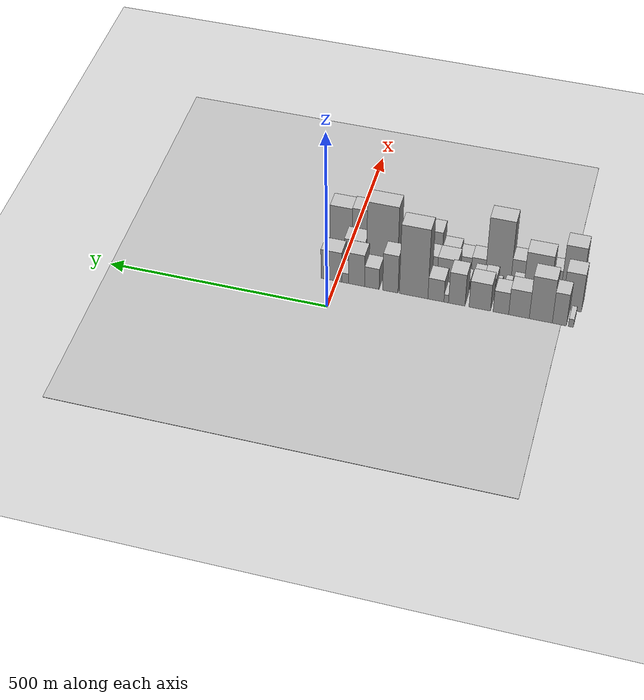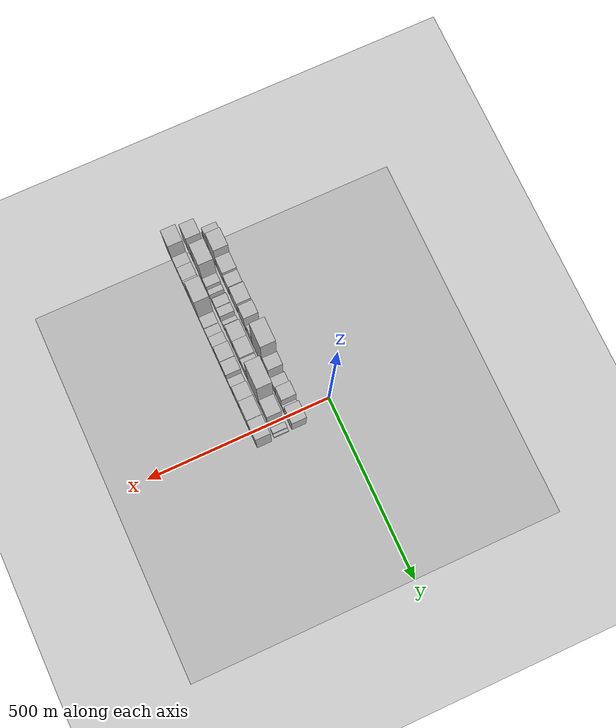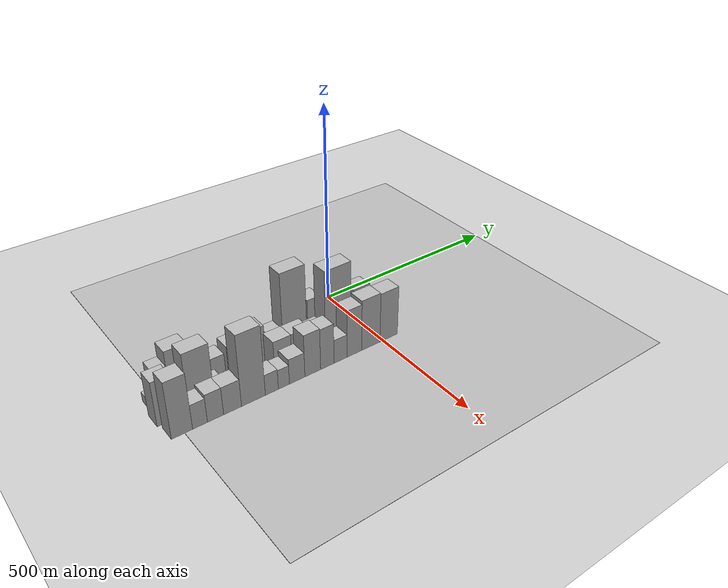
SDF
<sdf version="1.6">
 <world name="default">
  <include><name>ground_plane_1</name><uri>model://HANNAS_ground_plane</uri></include>
  <include>
   <name>ground_plane_2</name>
   <uri>model://HANNAS_ground_plane</uri>
   <pose>100 0 0  0 0 0</pose>
  </include>
  <model name="building_1">
   <static>1</static>
   <pose>100.0000 -521.4037 0 0.000000 0.000000 0.000000</pose>
   <link name="link">
    <pose>0 0 12.00 0 0 0</pose>
    <collision name="collision"><geometry><box><size>40.0000 11.1926 24.0000</size></box></geometry></collision>
    <visual name="visual">
     <cast_shadows>0</cast_shadows>
     <geometry><box><size>40.0000 11.1926 24.0000</size></box></geometry>
     <material>
      <script>
       <uri>model://HANNAS_wall/materials/scripts</uri>
       <uri>model://HANNAS_wall/materials/textures</uri>
       <name>vrc/HANNAS_wall</name>
      </script>
     </material>
    </visual>
   </link>
  </model>
  <model name="building_2">
   <static>1</static>
   <pose>100.0000 -496.3942 0 0.000000 0.000000 0.000000</pose>
   <link name="link">
    <pose>0 0 48.00 0 0 0</pose>
    <collision name="collision"><geometry><box><size>40.0000 30.8265 96.0000</size></box></geometry></collision>
    <visual name="visual">
     <cast_shadows>0</cast_shadows>
     <geometry><box><size>40.0000 30.8265 96.0000</size></box></geometry>
     <material>
      <script>
       <uri>model://HANNAS_wall/materials/scripts</uri>
       <uri>model://HANNAS_wall/materials/textures</uri>
       <name>vrc/HANNAS_wall</name>
      </script>
     </material>
    </visual>
   </link>
  </model>
  <model name="building_3">
   <static>1</static>
   <pose>100.0000 -455.8077 0 0.000000 0.000000 0.000000</pose>
   <link name="link">
    <pose>0 0 66.00 0 0 0</pose>
    <collision name="collision"><geometry><box><size>40.0000 50.3465 132.0000</size></box></geometry></collision>
    <visual name="visual">
     <cast_shadows>0</cast_shadows>
     <geometry><box><size>40.0000 50.3465 132.0000</size></box></geometry>
     <material>
      <script>
       <uri>model://HANNAS_wall/materials/scripts</uri>
       <uri>model://HANNAS_wall/materials/textures</uri>
       <name>vrc/HANNAS_wall</name>
      </script>
     </material>
    </visual>
   </link>
  </model>
  <model name="building_4">
   <static>1</static>
   <pose>100.0000 -408.0286 0 0.000000 0.000000 0.000000</pose>
   <link name="link">
    <pose>0 0 40.50 0 0 0</pose>
    <collision name="collision"><geometry><box><size>40.0000 45.2117 81.0000</size></box></geometry></collision>
    <visual name="visual">
     <cast_shadows>0</cast_shadows>
     <geometry><box><size>40.0000 45.2117 81.0000</size></box></geometry>
     <material>
      <script>
       <uri>model://HANNAS_wall/materials/scripts</uri>
       <uri>model://HANNAS_wall/materials/textures</uri>
       <name>vrc/HANNAS_wall</name>
      </script>
     </material>
    </visual>
   </link>
  </model>
  <model name="building_5">
   <static>1</static>
   <pose>100.0000 -368.3532 0 0.000000 0.000000 0.000000</pose>
   <link name="link">
    <pose>0 0 33.00 0 0 0</pose>
    <collision name="collision"><geometry><box><size>40.0000 34.1391 66.0000</size></box></geometry></collision>
    <visual name="visual">
     <cast_shadows>0</cast_shadows>
     <geometry><box><size>40.0000 34.1391 66.0000</size></box></geometry>
     <material>
      <script>
       <uri>model://HANNAS_wall/materials/scripts</uri>
       <uri>model://HANNAS_wall/materials/textures</uri>
       <name>vrc/HANNAS_wall</name>
      </script>
     </material>
    </visual>
   </link>
  </model>
  <model name="building_6">
   <static>1</static>
   <pose>100.0000 -321.5796 0 0.000000 0.000000 0.000000</pose>
   <link name="link">
    <pose>0 0 40.50 0 0 0</pose>
    <collision name="collision"><geometry><box><size>40.0000 47.4082 81.0000</size></box></geometry></collision>
    <visual name="visual">
     <cast_shadows>0</cast_shadows>
     <geometry><box><size>40.0000 47.4082 81.0000</size></box></geometry>
     <material>
      <script>
       <uri>model://HANNAS_wall/materials/scripts</uri>
       <uri>model://HANNAS_wall/materials/textures</uri>
       <name>vrc/HANNAS_wall</name>
      </script>
     </material>
    </visual>
   </link>
  </model>
  <model name="building_7">
   <static>1</static>
   <pose>100.0000 -270.5550 0 0.000000 0.000000 0.000000</pose>
   <link name="link">
    <pose>0 0 48.00 0 0 0</pose>
    <collision name="collision"><geometry><box><size>40.0000 36.6409 96.0000</size></box></geometry></collision>
    <visual name="visual">
     <cast_shadows>0</cast_shadows>
     <geometry><box><size>40.0000 36.6409 96.0000</size></box></geometry>
     <material>
      <script>
       <uri>model://HANNAS_wall/materials/scripts</uri>
       <uri>model://HANNAS_wall/materials/textures</uri>
       <name>vrc/HANNAS_wall</name>
      </script>
     </material>
    </visual>
   </link>
  </model>
  <model name="building_8">
   <static>1</static>
   <pose>100.0000 -247.0979 0 0.000000 0.000000 0.000000</pose>
   <link name="link">
    <pose>0 0 12.00 0 0 0</pose>
    <collision name="collision"><geometry><box><size>40.0000 10.2732 24.0000</size></box></geometry></collision>
    <visual name="visual">
     <cast_shadows>0</cast_shadows>
     <geometry><box><size>40.0000 10.2732 24.0000</size></box></geometry>
     <material>
      <script>
       <uri>model://HANNAS_wall/materials/scripts</uri>
       <uri>model://HANNAS_wall/materials/textures</uri>
       <name>vrc/HANNAS_wall</name>
      </script>
     </material>
    </visual>
   </link>
  </model>
  <model name="building_9">
   <static>1</static>
   <pose>100.0000 -224.0156 0 0.000000 0.000000 0.000000</pose>
   <link name="link">
    <pose>0 0 33.00 0 0 0</pose>
    <collision name="collision"><geometry><box><size>40.0000 35.8916 66.0000</size></box></geometry></collision>
    <visual name="visual">
     <cast_shadows>0</cast_shadows>
     <geometry><box><size>40.0000 35.8916 66.0000</size></box></geometry>
     <material>
      <script>
       <uri>model://HANNAS_wall/materials/scripts</uri>
       <uri>model://HANNAS_wall/materials/textures</uri>
       <name>vrc/HANNAS_wall</name>
      </script>
     </material>
    </visual>
   </link>
  </model>
  <model name="building_10">
   <static>1</static>
   <pose>100.0000 -174.0560 0 0.000000 0.000000 0.000000</pose>
   <link name="link">
    <pose>0 0 105.00 0 0 0</pose>
    <collision name="collision"><geometry><box><size>40.0000 64.0275 210.0000</size></box></geometry></collision>
    <visual name="visual">
     <cast_shadows>0</cast_shadows>
     <geometry><box><size>40.0000 64.0275 210.0000</size></box></geometry>
     <material>
      <script>
       <uri>model://HANNAS_wall/materials/scripts</uri>
       <uri>model://HANNAS_wall/materials/textures</uri>
       <name>vrc/HANNAS_wall</name>
      </script>
     </material>
    </visual>
   </link>
  </model>
  <model name="building_11">
   <static>1</static>
   <pose>100.0000 -121.6259 0 0.000000 0.000000 0.000000</pose>
   <link name="link">
    <pose>0 0 57.00 0 0 0</pose>
    <collision name="collision"><geometry><box><size>40.0000 34.8327 114.0000</size></box></geometry></collision>
    <visual name="visual">
     <cast_shadows>0</cast_shadows>
     <geometry><box><size>40.0000 34.8327 114.0000</size></box></geometry>
     <material>
      <script>
       <uri>model://HANNAS_wall/materials/scripts</uri>
       <uri>model://HANNAS_wall/materials/textures</uri>
       <name>vrc/HANNAS_wall</name>
      </script>
     </material>
    </visual>
   </link>
  </model>
  <model name="building_12">
   <static>1</static>
   <pose>100.0000 -79.8092 0 0.000000 0.000000 0.000000</pose>
   <link name="link">
    <pose>0 0 31.50 0 0 0</pose>
    <collision name="collision"><geometry><box><size>40.0000 32.8008 63.0000</size></box></geometry></collision>
    <visual name="visual">
     <cast_shadows>0</cast_shadows>
     <geometry><box><size>40.0000 32.8008 63.0000</size></box></geometry>
     <material>
      <script>
       <uri>model://HANNAS_wall/materials/scripts</uri>
       <uri>model://HANNAS_wall/materials/textures</uri>
       <name>vrc/HANNAS_wall</name>
      </script>
     </material>
    </visual>
   </link>
  </model>
  <model name="building_13">
   <static>1</static>
   <pose>100.0000 -44.9601 0 0.000000 0.000000 0.000000</pose>
   <link name="link">
    <pose>0 0 48.00 0 0 0</pose>
    <collision name="collision"><geometry><box><size>40.0000 36.8974 96.0000</size></box></geometry></collision>
    <visual name="visual">
     <cast_shadows>0</cast_shadows>
     <geometry><box><size>40.0000 36.8974 96.0000</size></box></geometry>
     <material>
      <script>
       <uri>model://HANNAS_wall/materials/scripts</uri>
       <uri>model://HANNAS_wall/materials/textures</uri>
       <name>vrc/HANNAS_wall</name>
      </script>
     </material>
    </visual>
   </link>
  </model>
  <model name="building_14">
   <static>1</static>
   <pose>100.0000 -18.8374 0 0.000000 0.000000 0.000000</pose>
   <link name="link">
    <pose>0 0 15.00 0 0 0</pose>
    <collision name="collision"><geometry><box><size>40.0000 15.3480 30.0000</size></box></geometry></collision>
    <visual name="visual">
     <cast_shadows>0</cast_shadows>
     <geometry><box><size>40.0000 15.3480 30.0000</size></box></geometry>
     <material>
      <script>
       <uri>model://HANNAS_wall/materials/scripts</uri>
       <uri>model://HANNAS_wall/materials/textures</uri>
       <name>vrc/HANNAS_wall</name>
      </script>
     </material>
    </visual>
   </link>
  </model>
  <model name="building_15">
   <static>1</static>
   <pose>100.0000 12.3434 0 0.000000 0.000000 0.000000</pose>
   <link name="link">
    <pose>0 0 45.00 0 0 0</pose>
    <collision name="collision"><geometry><box><size>40.0000 47.0137 90.0000</size></box></geometry></collision>
    <visual name="visual">
     <cast_shadows>0</cast_shadows>
     <geometry><box><size>40.0000 47.0137 90.0000</size></box></geometry>
     <material>
      <script>
       <uri>model://HANNAS_wall/materials/scripts</uri>
       <uri>model://HANNAS_wall/materials/textures</uri>
       <name>vrc/HANNAS_wall</name>
      </script>
     </material>
    </visual>
   </link>
  </model>
  <model name="building_32">
   <static>1</static>
   <pose>149.0000 -514.9103 0 0.000000 0.000000 0.000000</pose>
   <link name="link">
    <pose>0 0 57.00 0 0 0</pose>
    <collision name="collision"><geometry><box><size>40.0000 42.1795 114.0000</size></box></geometry></collision>
    <visual name="visual">
     <cast_shadows>0</cast_shadows>
     <geometry><box><size>40.0000 42.1795 114.0000</size></box></geometry>
     <material>
      <script>
       <uri>model://HANNAS_wall/materials/scripts</uri>
       <uri>model://HANNAS_wall/materials/textures</uri>
       <name>vrc/HANNAS_wall</name>
      </script>
     </material>
    </visual>
   </link>
  </model>
  <model name="building_33">
   <static>1</static>
   <pose>149.0000 -479.6092 0 0.000000 0.000000 0.000000</pose>
   <link name="link">
    <pose>0 0 18.00 0 0 0</pose>
    <collision name="collision"><geometry><box><size>40.0000 18.4227 36.0000</size></box></geometry></collision>
    <visual name="visual">
     <cast_shadows>0</cast_shadows>
     <geometry><box><size>40.0000 18.4227 36.0000</size></box></geometry>
     <material>
      <script>
       <uri>model://HANNAS_wall/materials/scripts</uri>
       <uri>model://HANNAS_wall/materials/textures</uri>
       <name>vrc/HANNAS_wall</name>
      </script>
     </material>
    </visual>
   </link>
  </model>
  <model name="building_34">
   <static>1</static>
   <pose>149.0000 -435.8248 0 0.000000 0.000000 0.000000</pose>
   <link name="link">
    <pose>0 0 75.00 0 0 0</pose>
    <collision name="collision"><geometry><box><size>40.0000 59.1461 150.0000</size></box></geometry></collision>
    <visual name="visual">
     <cast_shadows>0</cast_shadows>
     <geometry><box><size>40.0000 59.1461 150.0000</size></box></geometry>
     <material>
      <script>
       <uri>model://HANNAS_wall/materials/scripts</uri>
       <uri>model://HANNAS_wall/materials/textures</uri>
       <name>vrc/HANNAS_wall</name>
      </script>
     </material>
    </visual>
   </link>
  </model>
  <model name="building_35">
   <static>1</static>
   <pose>149.0000 -393.4889 0 0.000000 0.000000 0.000000</pose>
   <link name="link">
    <pose>0 0 22.50 0 0 0</pose>
    <collision name="collision"><geometry><box><size>40.0000 25.5256 45.0000</size></box></geometry></collision>
    <visual name="visual">
     <cast_shadows>0</cast_shadows>
     <geometry><box><size>40.0000 25.5256 45.0000</size></box></geometry>
     <material>
      <script>
       <uri>model://HANNAS_wall/materials/scripts</uri>
       <uri>model://HANNAS_wall/materials/textures</uri>
       <name>vrc/HANNAS_wall</name>
      </script>
     </material>
    </visual>
   </link>
  </model>
  <model name="building_36">
   <static>1</static>
   <pose>149.0000 -370.1342 0 0.000000 0.000000 0.000000</pose>
   <link name="link">
    <pose>0 0 15.00 0 0 0</pose>
    <collision name="collision"><geometry><box><size>40.0000 15.1838 30.0000</size></box></geometry></collision>
    <visual name="visual">
     <cast_shadows>0</cast_shadows>
     <geometry><box><size>40.0000 15.1838 30.0000</size></box></geometry>
     <material>
      <script>
       <uri>model://HANNAS_wall/materials/scripts</uri>
       <uri>model://HANNAS_wall/materials/textures</uri>
       <name>vrc/HANNAS_wall</name>
      </script>
     </material>
    </visual>
   </link>
  </model>
  <model name="building_37">
   <static>1</static>
   <pose>149.0000 -350.5875 0 0.000000 0.000000 0.000000</pose>
   <link name="link">
    <pose>0 0 12.00 0 0 0</pose>
    <collision name="collision"><geometry><box><size>40.0000 9.9095 24.0000</size></box></geometry></collision>
    <visual name="visual">
     <cast_shadows>0</cast_shadows>
     <geometry><box><size>40.0000 9.9095 24.0000</size></box></geometry>
     <material>
      <script>
       <uri>model://HANNAS_wall/materials/scripts</uri>
       <uri>model://HANNAS_wall/materials/textures</uri>
       <name>vrc/HANNAS_wall</name>
      </script>
     </material>
    </visual>
   </link>
  </model>
  <model name="building_38">
   <static>1</static>
   <pose>149.0000 -332.2537 0 0.000000 0.000000 0.000000</pose>
   <link name="link">
    <pose>0 0 25.50 0 0 0</pose>
    <collision name="collision"><geometry><box><size>40.0000 26.7582 51.0000</size></box></geometry></collision>
    <visual name="visual">
     <cast_shadows>0</cast_shadows>
     <geometry><box><size>40.0000 26.7582 51.0000</size></box></geometry>
     <material>
      <script>
       <uri>model://HANNAS_wall/materials/scripts</uri>
       <uri>model://HANNAS_wall/materials/textures</uri>
       <name>vrc/HANNAS_wall</name>
      </script>
     </material>
    </visual>
   </link>
  </model>
  <model name="building_39">
   <static>1</static>
   <pose>149.0000 -306.7413 0 0.000000 0.000000 0.000000</pose>
   <link name="link">
    <pose>0 0 24.00 0 0 0</pose>
    <collision name="collision"><geometry><box><size>40.0000 24.2666 48.0000</size></box></geometry></collision>
    <visual name="visual">
     <cast_shadows>0</cast_shadows>
     <geometry><box><size>40.0000 24.2666 48.0000</size></box></geometry>
     <material>
      <script>
       <uri>model://HANNAS_wall/materials/scripts</uri>
       <uri>model://HANNAS_wall/materials/textures</uri>
       <name>vrc/HANNAS_wall</name>
      </script>
     </material>
    </visual>
   </link>
  </model>
  <model name="building_40">
   <static>1</static>
   <pose>149.0000 -282.5725 0 0.000000 0.000000 0.000000</pose>
   <link name="link">
    <pose>0 0 13.50 0 0 0</pose>
    <collision name="collision"><geometry><box><size>40.0000 12.0711 27.0000</size></box></geometry></collision>
    <visual name="visual">
     <cast_shadows>0</cast_shadows>
     <geometry><box><size>40.0000 12.0711 27.0000</size></box></geometry>
     <material>
      <script>
       <uri>model://HANNAS_wall/materials/scripts</uri>
       <uri>model://HANNAS_wall/materials/textures</uri>
       <name>vrc/HANNAS_wall</name>
      </script>
     </material>
    </visual>
   </link>
  </model>
  <model name="building_41">
   <static>1</static>
   <pose>149.0000 -273.2129 0 0.000000 0.000000 0.000000</pose>
   <link name="link">
    <pose>0 0 7.50 0 0 0</pose>
    <collision name="collision"><geometry><box><size>40.0000 6.6481 15.0000</size></box></geometry></collision>
    <visual name="visual">
     <cast_shadows>0</cast_shadows>
     <geometry><box><size>40.0000 6.6481 15.0000</size></box></geometry>
     <material>
      <script>
       <uri>model://HANNAS_wall/materials/scripts</uri>
       <uri>model://HANNAS_wall/materials/textures</uri>
       <name>vrc/HANNAS_wall</name>
      </script>
     </material>
    </visual>
   </link>
  </model>
  <model name="building_42">
   <static>1</static>
   <pose>149.0000 -237.4442 0 0.000000 0.000000 0.000000</pose>
   <link name="link">
    <pose>0 0 42.00 0 0 0</pose>
    <collision name="collision"><geometry><box><size>40.0000 44.8894 84.0000</size></box></geometry></collision>
    <visual name="visual">
     <cast_shadows>0</cast_shadows>
     <geometry><box><size>40.0000 44.8894 84.0000</size></box></geometry>
     <material>
      <script>
       <uri>model://HANNAS_wall/materials/scripts</uri>
       <uri>model://HANNAS_wall/materials/textures</uri>
       <name>vrc/HANNAS_wall</name>
      </script>
     </material>
    </visual>
   </link>
  </model>
  <model name="building_43">
   <static>1</static>
   <pose>149.0000 -191.5692 0 0.000000 0.000000 0.000000</pose>
   <link name="link">
    <pose>0 0 42.00 0 0 0</pose>
    <collision name="collision"><geometry><box><size>40.0000 46.8606 84.0000</size></box></geometry></collision>
    <visual name="visual">
     <cast_shadows>0</cast_shadows>
     <geometry><box><size>40.0000 46.8606 84.0000</size></box></geometry>
     <material>
      <script>
       <uri>model://HANNAS_wall/materials/scripts</uri>
       <uri>model://HANNAS_wall/materials/textures</uri>
       <name>vrc/HANNAS_wall</name>
      </script>
     </material>
    </visual>
   </link>
  </model>
  <model name="building_44">
   <static>1</static>
   <pose>149.0000 -146.8009 0 0.000000 0.000000 0.000000</pose>
   <link name="link">
    <pose>0 0 36.00 0 0 0</pose>
    <collision name="collision"><geometry><box><size>40.0000 42.6759 72.0000</size></box></geometry></collision>
    <visual name="visual">
     <cast_shadows>0</cast_shadows>
     <geometry><box><size>40.0000 42.6759 72.0000</size></box></geometry>
     <material>
      <script>
       <uri>model://HANNAS_wall/materials/scripts</uri>
       <uri>model://HANNAS_wall/materials/textures</uri>
       <name>vrc/HANNAS_wall</name>
      </script>
     </material>
    </visual>
   </link>
  </model>
  <model name="building_45">
   <static>1</static>
   <pose>149.0000 -90.2303 0 0.000000 0.000000 0.000000</pose>
   <link name="link">
    <pose>0 0 105.00 0 0 0</pose>
    <collision name="collision"><geometry><box><size>40.0000 70.4652 210.0000</size></box></geometry></collision>
    <visual name="visual">
     <cast_shadows>0</cast_shadows>
     <geometry><box><size>40.0000 70.4652 210.0000</size></box></geometry>
     <material>
      <script>
       <uri>model://HANNAS_wall/materials/scripts</uri>
       <uri>model://HANNAS_wall/materials/textures</uri>
       <name>vrc/HANNAS_wall</name>
      </script>
     </material>
    </visual>
   </link>
  </model>
  <model name="building_46">
   <static>1</static>
   <pose>149.0000 -28.0417 0 0.000000 0.000000 0.000000</pose>
   <link name="link">
    <pose>0 0 43.50 0 0 0</pose>
    <collision name="collision"><geometry><box><size>40.0000 47.9121 87.0000</size></box></geometry></collision>
    <visual name="visual">
     <cast_shadows>0</cast_shadows>
     <geometry><box><size>40.0000 47.9121 87.0000</size></box></geometry>
     <material>
      <script>
       <uri>model://HANNAS_wall/materials/scripts</uri>
       <uri>model://HANNAS_wall/materials/textures</uri>
       <name>vrc/HANNAS_wall</name>
      </script>
     </material>
    </visual>
   </link>
  </model>
  <model name="building_47">
   <static>1</static>
   <pose>149.0000 -0.2553 0 0.000000 0.000000 0.000000</pose>
   <link name="link">
    <pose>0 0 9.00 0 0 0</pose>
    <collision name="collision"><geometry><box><size>40.0000 7.6607 18.0000</size></box></geometry></collision>
    <visual name="visual">
     <cast_shadows>0</cast_shadows>
     <geometry><box><size>40.0000 7.6607 18.0000</size></box></geometry>
     <material>
      <script>
       <uri>model://HANNAS_wall/materials/scripts</uri>
       <uri>model://HANNAS_wall/materials/textures</uri>
       <name>vrc/HANNAS_wall</name>
      </script>
     </material>
    </visual>
   </link>
  </model>
  <model name="building_48">
   <static>1</static>
   <pose>149.0000 21.4753 0 0.000000 0.000000 0.000000</pose>
   <link name="link">
    <pose>0 0 15.00 0 0 0</pose>
    <collision name="collision"><geometry><box><size>40.0000 15.8003 30.0000</size></box></geometry></collision>
    <visual name="visual">
     <cast_shadows>0</cast_shadows>
     <geometry><box><size>40.0000 15.8003 30.0000</size></box></geometry>
     <material>
      <script>
       <uri>model://HANNAS_wall/materials/scripts</uri>
       <uri>model://HANNAS_wall/materials/textures</uri>
       <name>vrc/HANNAS_wall</name>
      </script>
     </material>
    </visual>
   </link>
  </model>
  <model name="building_49">
   <static>1</static>
   <pose>149.0000 33.0678 0 0.000000 0.000000 0.000000</pose>
   <link name="link">
    <pose>0 0 7.50 0 0 0</pose>
    <collision name="collision"><geometry><box><size>40.0000 7.3847 15.0000</size></box></geometry></collision>
    <visual name="visual">
     <cast_shadows>0</cast_shadows>
     <geometry><box><size>40.0000 7.3847 15.0000</size></box></geometry>
     <material>
      <script>
       <uri>model://HANNAS_wall/materials/scripts</uri>
       <uri>model://HANNAS_wall/materials/textures</uri>
       <name>vrc/HANNAS_wall</name>
      </script>
     </material>
    </visual>
   </link>
  </model>
  <model name="building_64">
   <static>1</static>
   <pose>198.0000 -505.8279 0 0.000000 0.000000 0.000000</pose>
   <link name="link">
    <pose>0 0 72.00 0 0 0</pose>
    <collision name="collision"><geometry><box><size>40.0000 46.3442 144.0000</size></box></geometry></collision>
    <visual name="visual">
     <cast_shadows>0</cast_shadows>
     <geometry><box><size>40.0000 46.3442 144.0000</size></box></geometry>
     <material>
      <script>
       <uri>model://HANNAS_wall/materials/scripts</uri>
       <uri>model://HANNAS_wall/materials/textures</uri>
       <name>vrc/HANNAS_wall</name>
      </script>
     </material>
    </visual>
   </link>
  </model>
  <model name="building_65">
   <static>1</static>
   <pose>198.0000 -466.1028 0 0.000000 0.000000 0.000000</pose>
   <link name="link">
    <pose>0 0 31.50 0 0 0</pose>
    <collision name="collision"><geometry><box><size>40.0000 33.1060 63.0000</size></box></geometry></collision>
    <visual name="visual">
     <cast_shadows>0</cast_shadows>
     <geometry><box><size>40.0000 33.1060 63.0000</size></box></geometry>
     <material>
      <script>
       <uri>model://HANNAS_wall/materials/scripts</uri>
       <uri>model://HANNAS_wall/materials/textures</uri>
       <name>vrc/HANNAS_wall</name>
      </script>
     </material>
    </visual>
   </link>
  </model>
  <model name="building_66">
   <static>1</static>
   <pose>198.0000 -431.1533 0 0.000000 0.000000 0.000000</pose>
   <link name="link">
    <pose>0 0 36.00 0 0 0</pose>
    <collision name="collision"><geometry><box><size>40.0000 36.7928 72.0000</size></box></geometry></collision>
    <visual name="visual">
     <cast_shadows>0</cast_shadows>
     <geometry><box><size>40.0000 36.7928 72.0000</size></box></geometry>
     <material>
      <script>
       <uri>model://HANNAS_wall/materials/scripts</uri>
       <uri>model://HANNAS_wall/materials/textures</uri>
       <name>vrc/HANNAS_wall</name>
      </script>
     </material>
    </visual>
   </link>
  </model>
  <model name="building_67">
   <static>1</static>
   <pose>198.0000 -391.8749 0 0.000000 0.000000 0.000000</pose>
   <link name="link">
    <pose>0 0 36.00 0 0 0</pose>
    <collision name="collision"><geometry><box><size>40.0000 41.7640 72.0000</size></box></geometry></collision>
    <visual name="visual">
     <cast_shadows>0</cast_shadows>
     <geometry><box><size>40.0000 41.7640 72.0000</size></box></geometry>
     <material>
      <script>
       <uri>model://HANNAS_wall/materials/scripts</uri>
       <uri>model://HANNAS_wall/materials/textures</uri>
       <name>vrc/HANNAS_wall</name>
      </script>
     </material>
    </visual>
   </link>
  </model>
  <model name="building_68">
   <static>1</static>
   <pose>198.0000 -342.3508 0 0.000000 0.000000 0.000000</pose>
   <link name="link">
    <pose>0 0 91.50 0 0 0</pose>
    <collision name="collision"><geometry><box><size>40.0000 57.2843 183.0000</size></box></geometry></collision>
    <visual name="visual">
     <cast_shadows>0</cast_shadows>
     <geometry><box><size>40.0000 57.2843 183.0000</size></box></geometry>
     <material>
      <script>
       <uri>model://HANNAS_wall/materials/scripts</uri>
       <uri>model://HANNAS_wall/materials/textures</uri>
       <name>vrc/HANNAS_wall</name>
      </script>
     </material>
    </visual>
   </link>
  </model>
  <model name="building_69">
   <static>1</static>
   <pose>198.0000 -297.6616 0 0.000000 0.000000 0.000000</pose>
   <link name="link">
    <pose>0 0 27.00 0 0 0</pose>
    <collision name="collision"><geometry><box><size>40.0000 32.0941 54.0000</size></box></geometry></collision>
    <visual name="visual">
     <cast_shadows>0</cast_shadows>
     <geometry><box><size>40.0000 32.0941 54.0000</size></box></geometry>
     <material>
      <script>
       <uri>model://HANNAS_wall/materials/scripts</uri>
       <uri>model://HANNAS_wall/materials/textures</uri>
       <name>vrc/HANNAS_wall</name>
      </script>
     </material>
    </visual>
   </link>
  </model>
  <model name="building_70">
   <static>1</static>
   <pose>198.0000 -267.7287 0 0.000000 0.000000 0.000000</pose>
   <link name="link">
    <pose>0 0 25.50 0 0 0</pose>
    <collision name="collision"><geometry><box><size>40.0000 27.7717 51.0000</size></box></geometry></collision>
    <visual name="visual">
     <cast_shadows>0</cast_shadows>
     <geometry><box><size>40.0000 27.7717 51.0000</size></box></geometry>
     <material>
      <script>
       <uri>model://HANNAS_wall/materials/scripts</uri>
       <uri>model://HANNAS_wall/materials/textures</uri>
       <name>vrc/HANNAS_wall</name>
      </script>
     </material>
    </visual>
   </link>
  </model>
  <model name="building_71">
   <static>1</static>
   <pose>198.0000 -234.0629 0 0.000000 0.000000 0.000000</pose>
   <link name="link">
    <pose>0 0 33.00 0 0 0</pose>
    <collision name="collision"><geometry><box><size>40.0000 39.5599 66.0000</size></box></geometry></collision>
    <visual name="visual">
     <cast_shadows>0</cast_shadows>
     <geometry><box><size>40.0000 39.5599 66.0000</size></box></geometry>
     <material>
      <script>
       <uri>model://HANNAS_wall/materials/scripts</uri>
       <uri>model://HANNAS_wall/materials/textures</uri>
       <name>vrc/HANNAS_wall</name>
      </script>
     </material>
    </visual>
   </link>
  </model>
  <model name="building_72">
   <static>1</static>
   <pose>198.0000 -193.7719 0 0.000000 0.000000 0.000000</pose>
   <link name="link">
    <pose>0 0 55.50 0 0 0</pose>
    <collision name="collision"><geometry><box><size>40.0000 41.0221 111.0000</size></box></geometry></collision>
    <visual name="visual">
     <cast_shadows>0</cast_shadows>
     <geometry><box><size>40.0000 41.0221 111.0000</size></box></geometry>
     <material>
      <script>
       <uri>model://HANNAS_wall/materials/scripts</uri>
       <uri>model://HANNAS_wall/materials/textures</uri>
       <name>vrc/HANNAS_wall</name>
      </script>
     </material>
    </visual>
   </link>
  </model>
  <model name="building_73">
   <static>1</static>
   <pose>198.0000 -155.2970 0 0.000000 0.000000 0.000000</pose>
   <link name="link">
    <pose>0 0 54.00 0 0 0</pose>
    <collision name="collision"><geometry><box><size>40.0000 35.9277 108.0000</size></box></geometry></collision>
    <visual name="visual">
     <cast_shadows>0</cast_shadows>
     <geometry><box><size>40.0000 35.9277 108.0000</size></box></geometry>
     <material>
      <script>
       <uri>model://HANNAS_wall/materials/scripts</uri>
       <uri>model://HANNAS_wall/materials/textures</uri>
       <name>vrc/HANNAS_wall</name>
      </script>
     </material>
    </visual>
   </link>
  </model>
  <model name="building_74">
   <static>1</static>
   <pose>198.0000 -119.5386 0 0.000000 0.000000 0.000000</pose>
   <link name="link">
    <pose>0 0 31.50 0 0 0</pose>
    <collision name="collision"><geometry><box><size>40.0000 35.5890 63.0000</size></box></geometry></collision>
    <visual name="visual">
     <cast_shadows>0</cast_shadows>
     <geometry><box><size>40.0000 35.5890 63.0000</size></box></geometry>
     <material>
      <script>
       <uri>model://HANNAS_wall/materials/scripts</uri>
       <uri>model://HANNAS_wall/materials/textures</uri>
       <name>vrc/HANNAS_wall</name>
      </script>
     </material>
    </visual>
   </link>
  </model>
  <model name="building_75">
   <static>1</static>
   <pose>198.0000 -81.4642 0 0.000000 0.000000 0.000000</pose>
   <link name="link">
    <pose>0 0 63.00 0 0 0</pose>
    <collision name="collision"><geometry><box><size>40.0000 40.5598 126.0000</size></box></geometry></collision>
    <visual name="visual">
     <cast_shadows>0</cast_shadows>
     <geometry><box><size>40.0000 40.5598 126.0000</size></box></geometry>
     <material>
      <script>
       <uri>model://HANNAS_wall/materials/scripts</uri>
       <uri>model://HANNAS_wall/materials/textures</uri>
       <name>vrc/HANNAS_wall</name>
      </script>
     </material>
    </visual>
   </link>
  </model>
  <model name="building_76">
   <static>1</static>
   <pose>198.0000 -35.2606 0 0.000000 0.000000 0.000000</pose>
   <link name="link">
    <pose>0 0 67.50 0 0 0</pose>
    <collision name="collision"><geometry><box><size>40.0000 51.8475 135.0000</size></box></geometry></collision>
    <visual name="visual">
     <cast_shadows>0</cast_shadows>
     <geometry><box><size>40.0000 51.8475 135.0000</size></box></geometry>
     <material>
      <script>
       <uri>model://HANNAS_wall/materials/scripts</uri>
       <uri>model://HANNAS_wall/materials/textures</uri>
       <name>vrc/HANNAS_wall</name>
      </script>
     </material>
    </visual>
   </link>
  </model>
  <model name="building_77">
   <static>1</static>
   <pose>198.0000 16.1675 0 0.000000 0.000000 0.000000</pose>
   <link name="link">
    <pose>0 0 66.00 0 0 0</pose>
    <collision name="collision"><geometry><box><size>40.0000 51.0086 132.0000</size></box></geometry></collision>
    <visual name="visual">
     <cast_shadows>0</cast_shadows>
     <geometry><box><size>40.0000 51.0086 132.0000</size></box></geometry>
     <material>
      <script>
       <uri>model://HANNAS_wall/materials/scripts</uri>
       <uri>model://HANNAS_wall/materials/textures</uri>
       <name>vrc/HANNAS_wall</name>
      </script>
     </material>
    </visual>
   </link>
  </model>
 </world>
</sdf>
